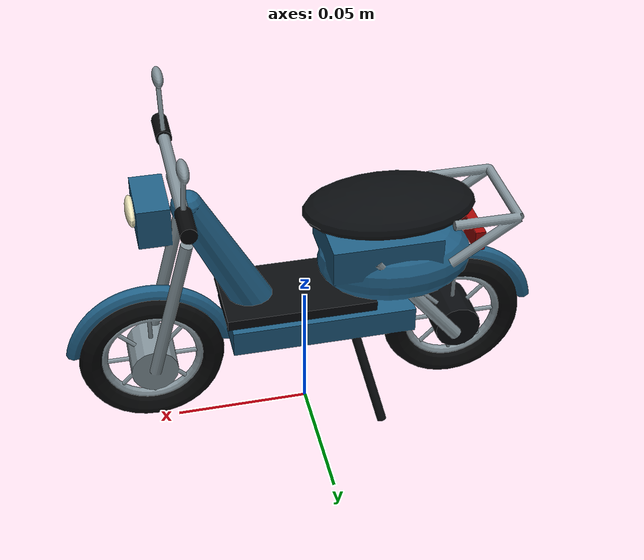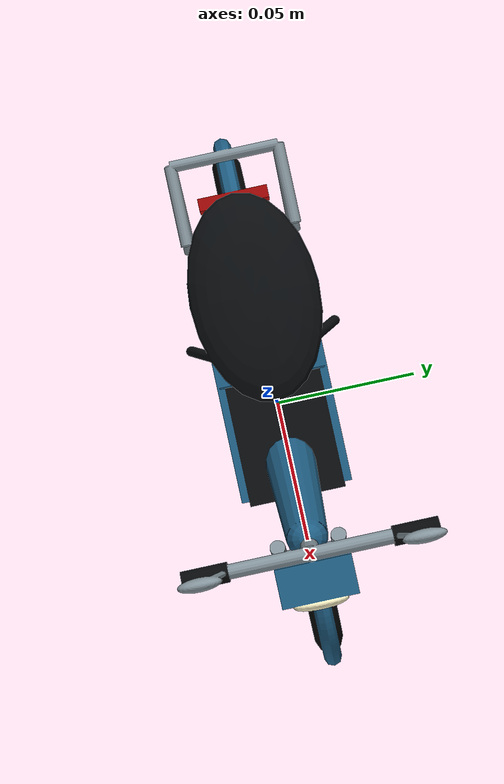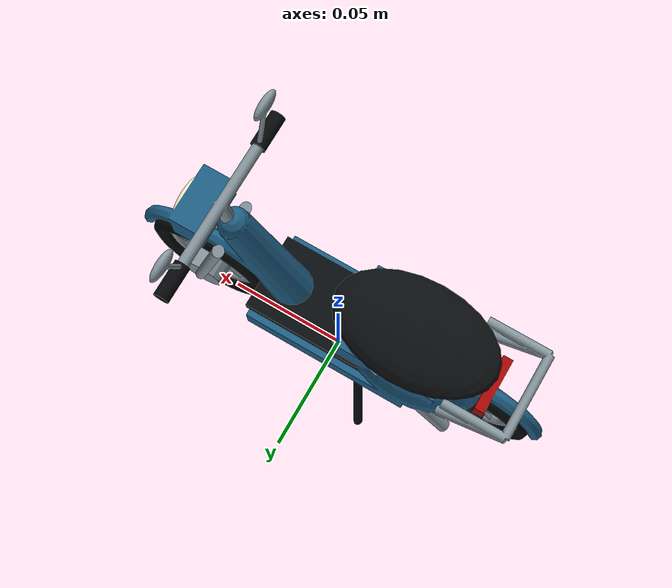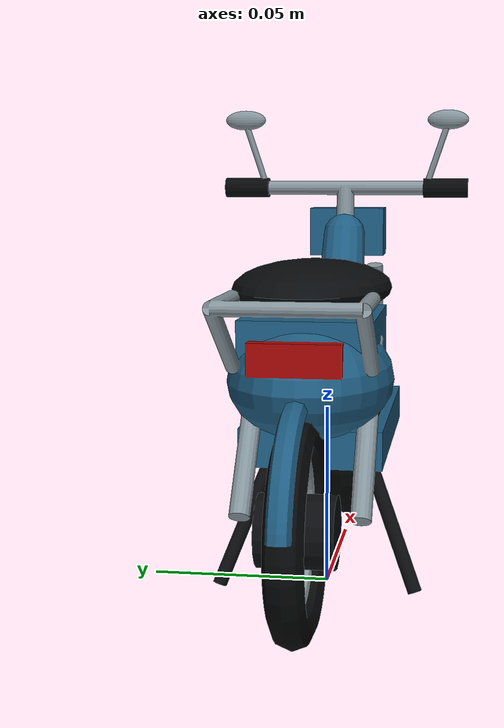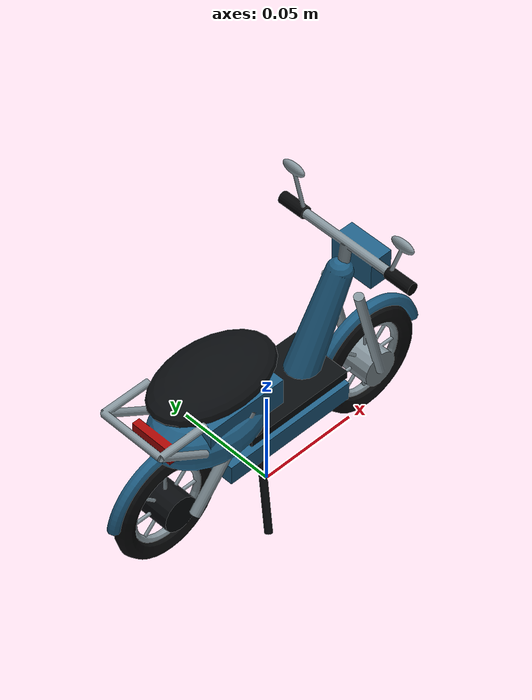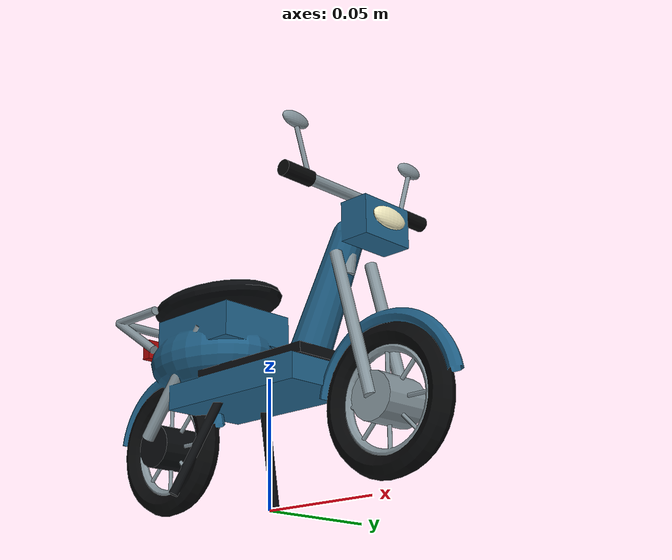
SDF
<sdf version='1.6'><model name='sq_ebikes_3d'><static>true</static><pose>0.000000 0.000000 0.004000 0.00000000 0 0.00000000</pose><link name='body'><visual name='body_visual'><geometry><mesh><uri>model://sq_ebikes_3d/meshes/ebike_0.dae</uri></mesh></geometry></visual><collision name='body_collision'><pose>0 0 0.065000 0 0 0</pose><geometry><box><size>0.180000 0.075000 0.130000</size></box></geometry></collision></link></model></sdf>
